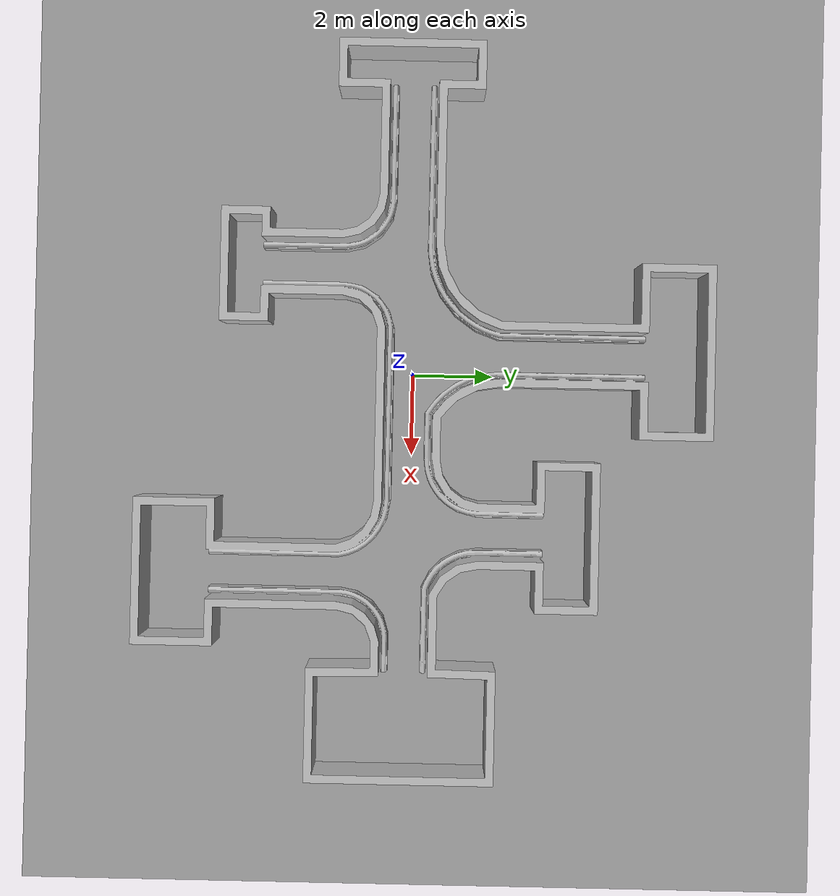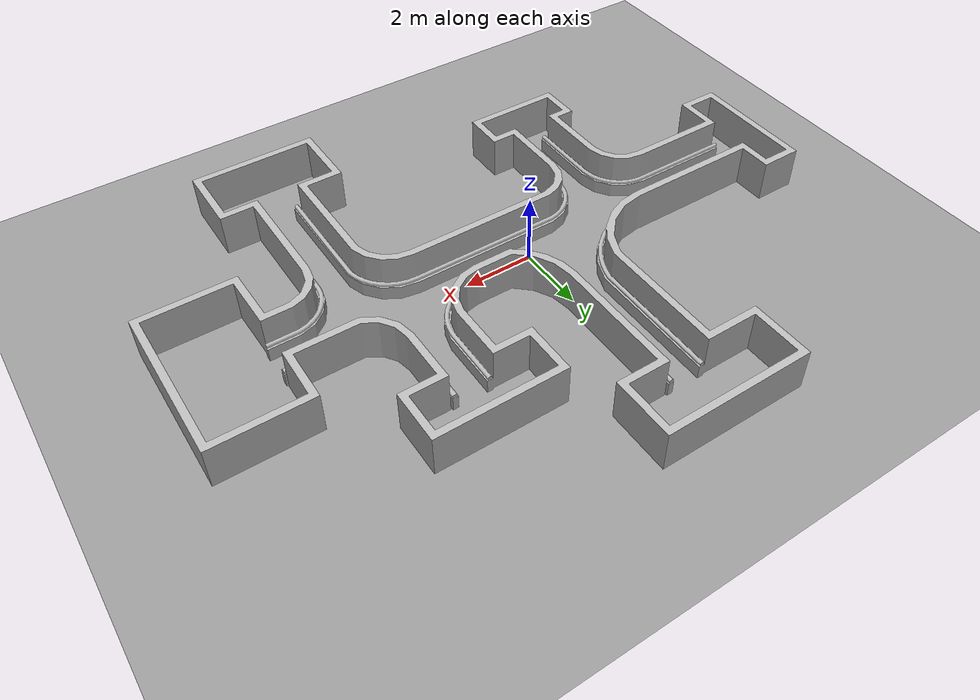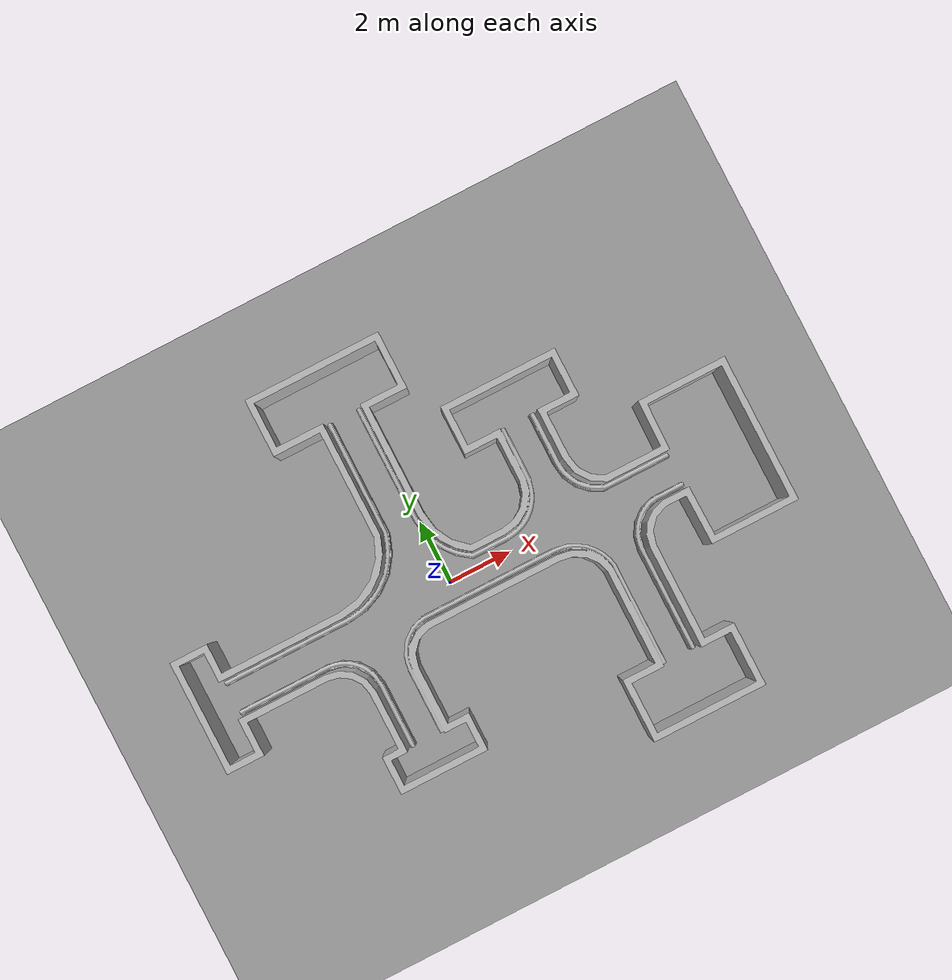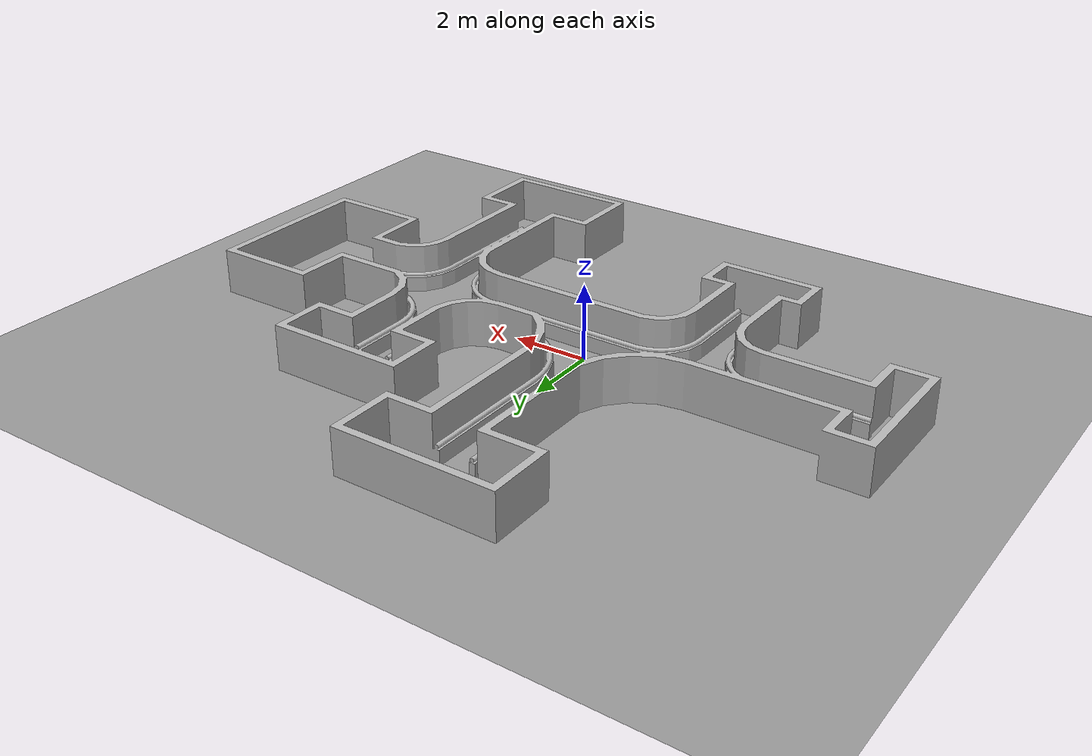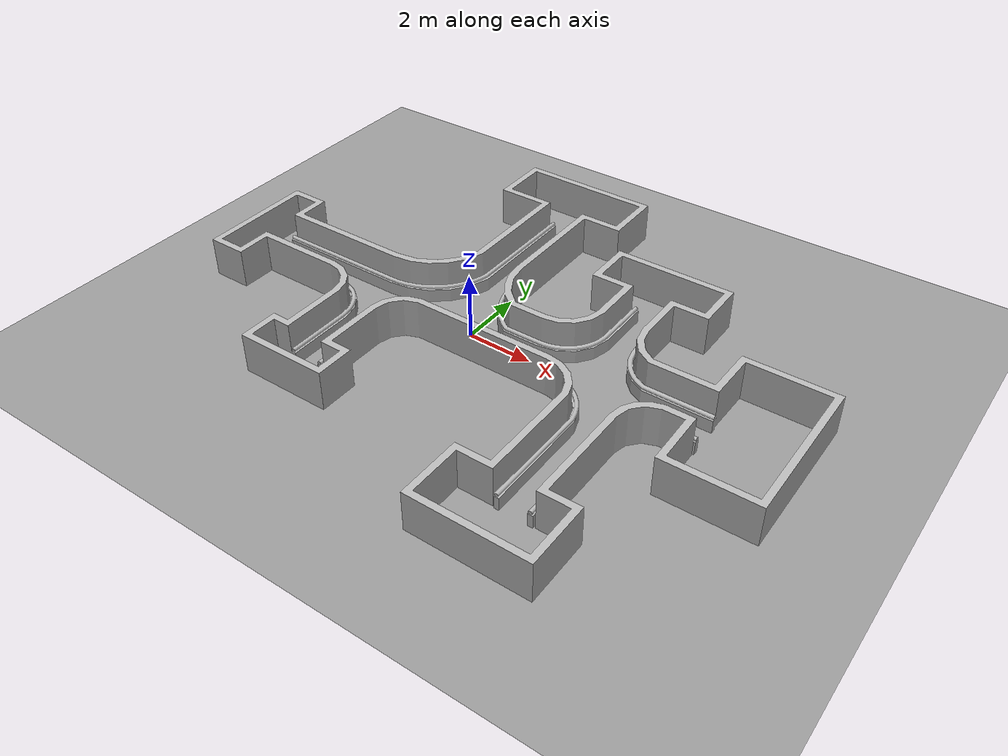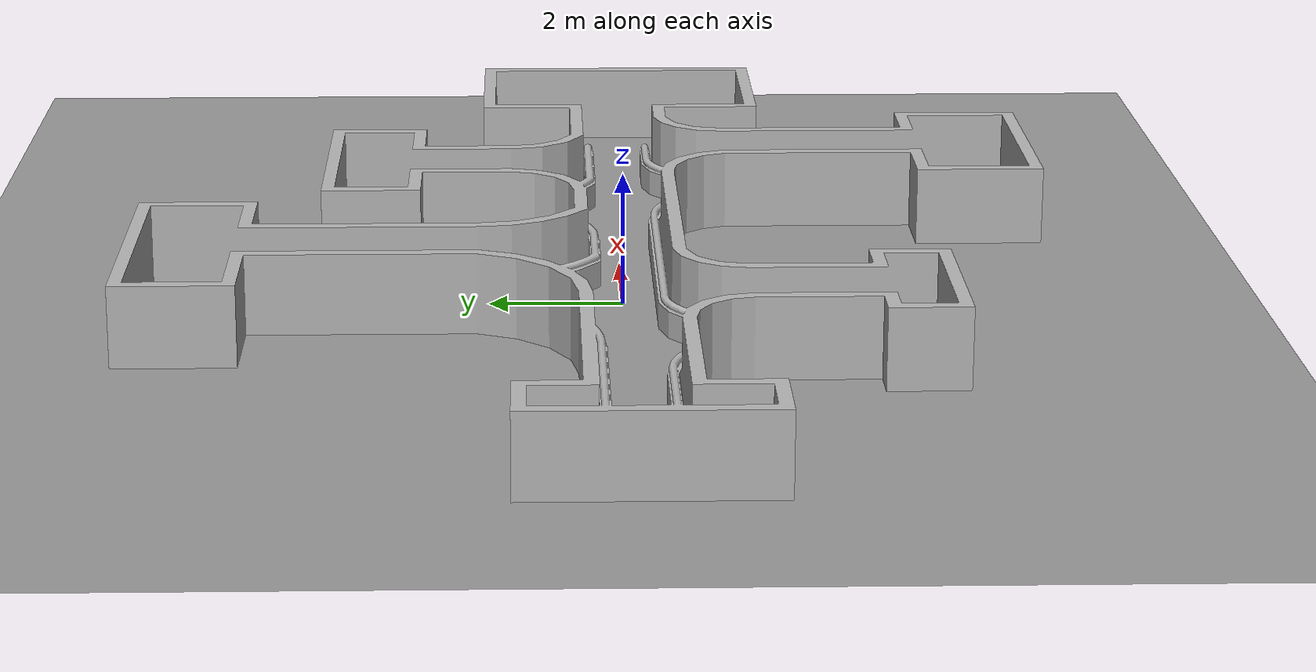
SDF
<sdf version='1.6'>
  <world name='default'>
    <light name='sun' type='directional'>
      <cast_shadows>1</cast_shadows>
      <pose>0 0 10 0 -0 0</pose>
      <diffuse>0.8 0.8 0.8 1</diffuse>
      <specular>0.2 0.2 0.2 1</specular>
      <attenuation>
        <range>1000</range>
        <constant>0.9</constant>
        <linear>0.01</linear>
        <quadratic>0.001</quadratic>
      </attenuation>
      <direction>0.5 0.1 -0.9</direction>
    </light>
    <scene>
      <ambient>0.4 0.4 0.4 1</ambient>
      <background>0.7 0.7 0.7 1</background>
      <shadows>1</shadows>
    </scene>
    <physics type='ode'>
      <max_step_size>0.01</max_step_size>
      <real_time_factor>1</real_time_factor>
      <real_time_update_rate>100</real_time_update_rate>
      <gravity>0 0 -9.8</gravity>
    </physics>

    <model name='ground_plane_0'>
      <static>1</static>
      <link name='link'>
        <collision name='collision'>
          <geometry>
            <plane>
              <normal>0 0 1</normal>
              <size>100 100</size>
            </plane>
          </geometry>
          <surface>
            <friction>
              <ode>
                <mu>100</mu>
                <mu2>50</mu2>
              </ode>
            </friction>
            <bounce/>
            <contact>
              <ode/>
            </contact>
          </surface>
          <max_contacts>10</max_contacts>
        </collision>
        <visual name='visual'>
          <cast_shadows>0</cast_shadows>
          <geometry>
            <plane>
              <normal>0 0 1</normal>
              <size>100 100</size>
            </plane>
          </geometry>
          <material>
            <script>
              <uri>file://media/materials/scripts/gazebo.material</uri>
              <name>Gazebo/Grey</name>
            </script>
          </material>
        </visual>
        <velocity_decay>
          <linear>0</linear>
          <angular>0</angular>
        </velocity_decay>
        <self_collide>0</self_collide>
        <kinematic>0</kinematic>
        <gravity>1</gravity>
      </link>
      <pose>0.497681 0 0 0 -0 0</pose>
    </model>

    <gui fullscreen='0'>
      <camera name='user_camera'>
        <pose>6.70261 2.41332 41.2791 0 1.4098 -3.1231</pose>
        <view_controller>orbit</view_controller>
      </camera>
    </gui>

  <model name='myworld'>
    <static>true</static>

      <pose>-8 -1.75 0 0 0 0</pose>
    <link name='myworld'>
      <visual name='myworld_visual'>
        <geometry>
          <mesh>
            <scale>0.4 0.4 0.4</scale>
            <uri>model://part.SLDPRT/meshes/part.SLDPRT.STL</uri>
          </mesh>
        </geometry>
      </visual>

      <collision name='myworld_collision'>
        <geometry>
          <mesh>
            <scale>0.4 0.4 0.4</scale>
            <uri>model://part.SLDPRT/meshes/part.SLDPRT.STL</uri>
          </mesh>
        </geometry>
        <max_contacts>10</max_contacts>
        <surface>
            <bounce/>
            <friction>
              <ode/>
            </friction>
            <contact>
              <ode/>
            </contact>
        </surface>
      </collision>
        <velocity_decay>
          <linear>0</linear>
          <angular>0</angular>
        </velocity_decay>
        <self_collide>true</self_collide>
        <kinematic>0</kinematic>
        <gravity>1</gravity>
    </link>
  </model>
</world>
</sdf>
